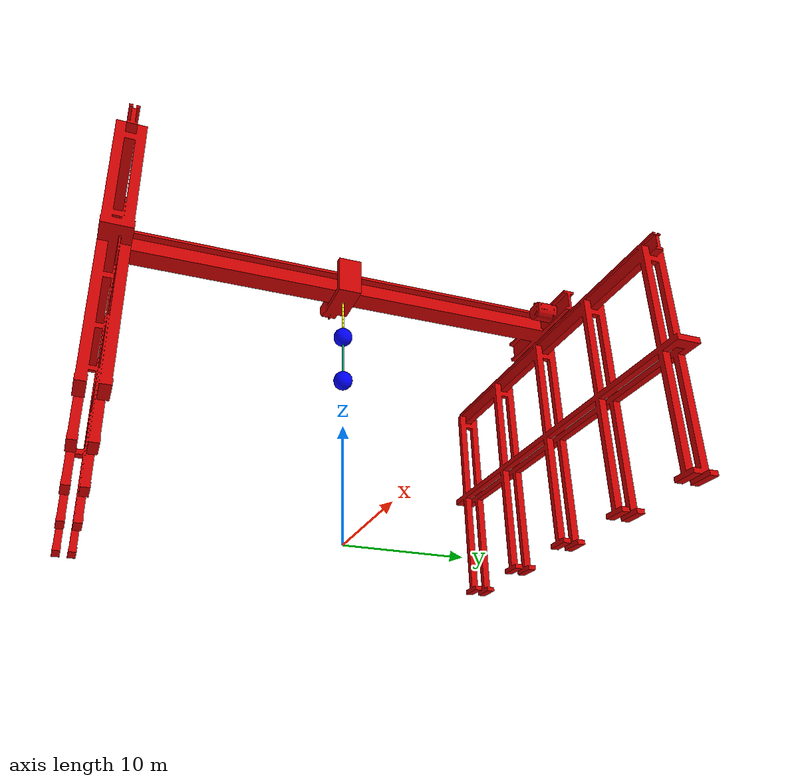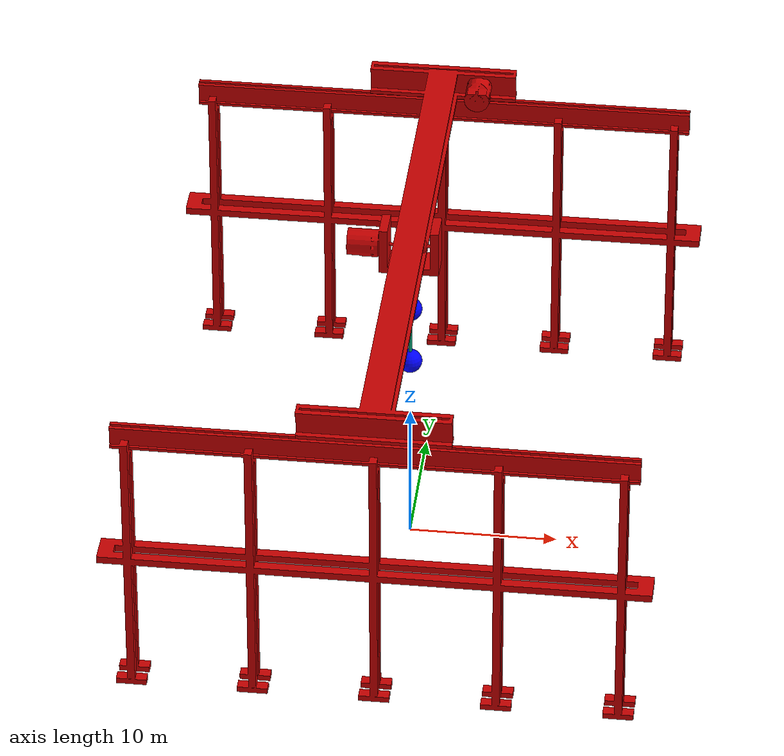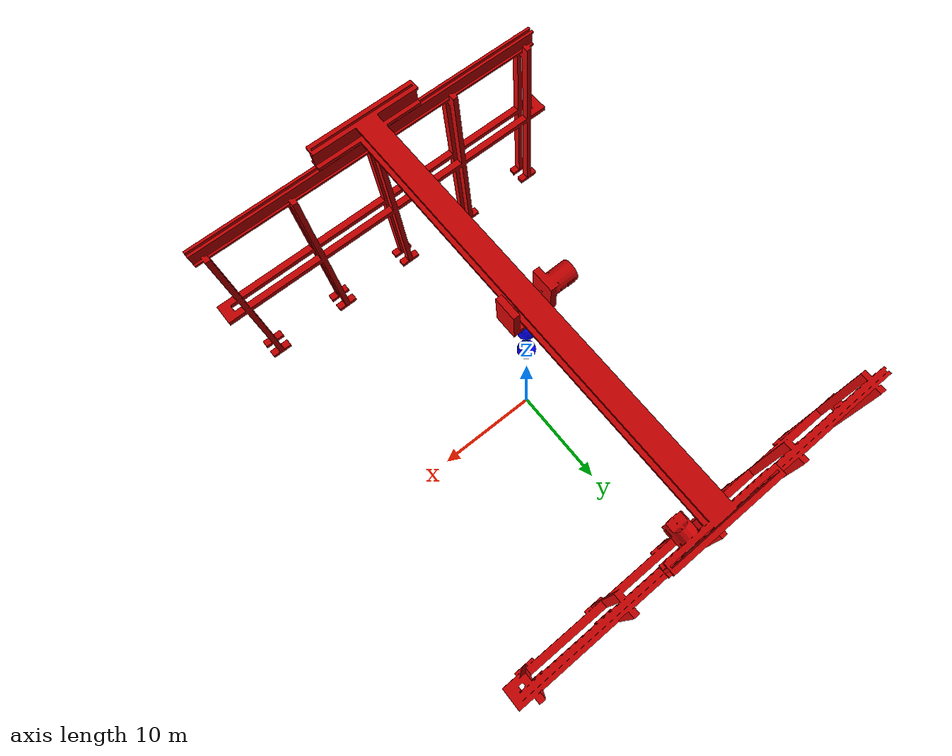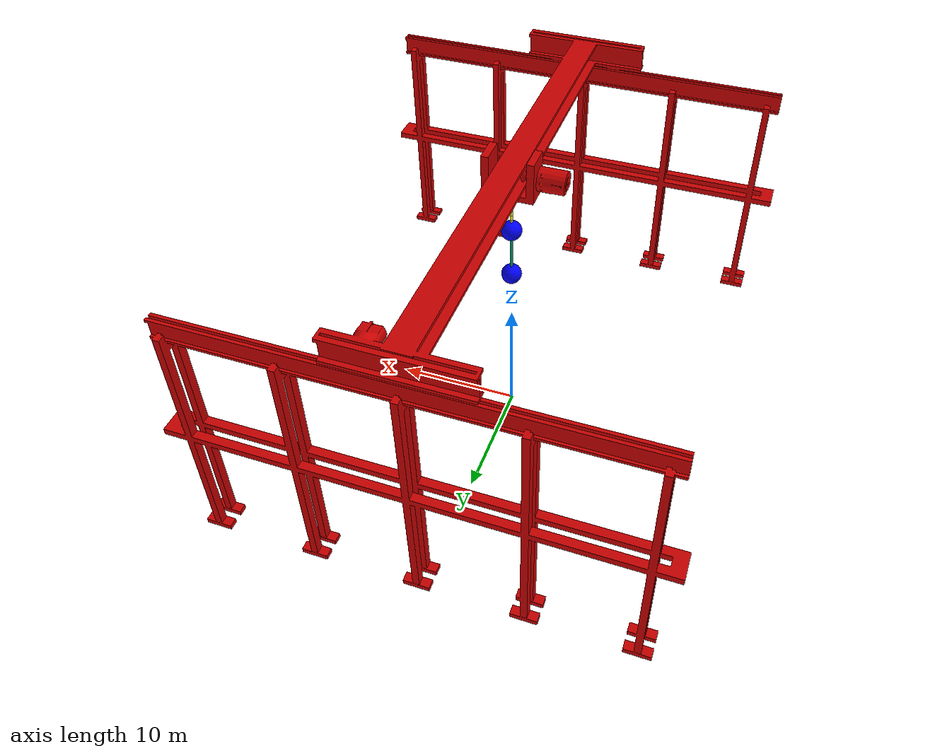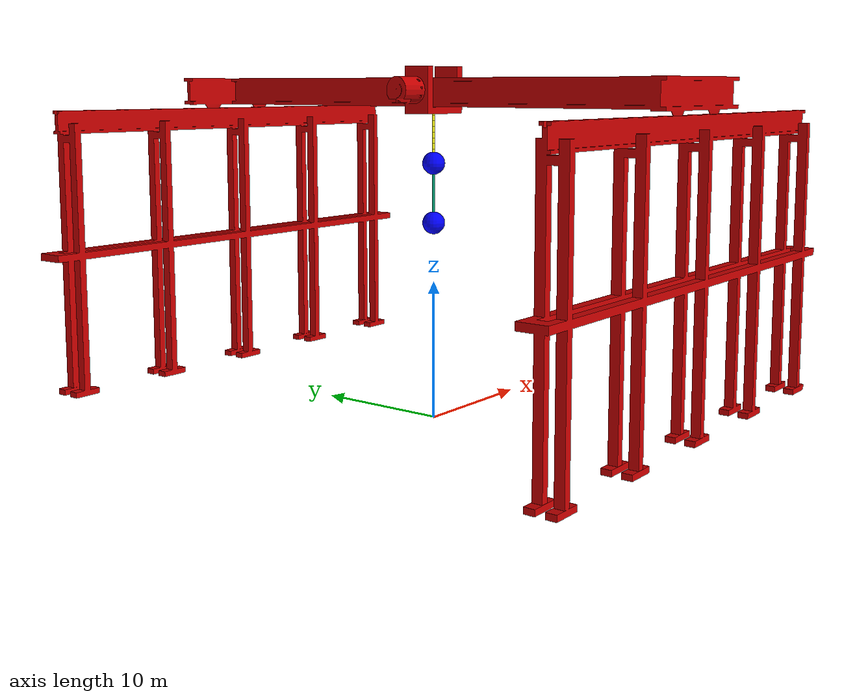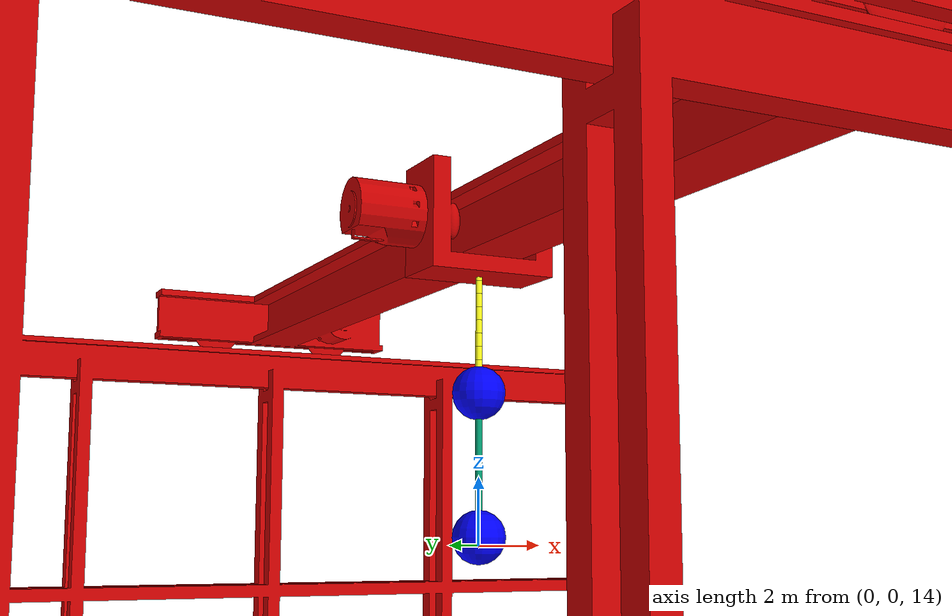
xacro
<?xml version="1.0"?>
<!-- URDF DESCRIPTION OF THE DOUBLE PENDULUM CRANE -->
<!-- October 2024                  -->

<robot name="crane" xmlns:xacro="http://www.ros.org/wiki/xacro">

<!-- Body dimensions -->
<xacro:property name="rope_length" value="4"/>
<xacro:property name="num_segments" value="10"/>
<xacro:property name="segment_length" value="${rope_length / num_segments}"/>
<xacro:property name="segment_mass" value="0.005"/>
<xacro:property name="segment_radius" value="0.1"/>
<xacro:property name="joint_radius" value="0.1"/>
<xacro:property name="cylinder_radius" value="0.1"/>
<xacro:property name="cylinder_length" value="8"/>

<material name="blue">
  <color rgba="0 0 0.8 1"/>
</material>
<material name="black">
  <color rgba="0 0 0 1"/>
</material>
<material name="white">
  <color rgba="1 1 1 1"/>
</material>
<material name="red">
  <color rgba="0.8 0 0 1"/>
</material>
<material name="red">
  <color rgba="0.8 0 0 1"/>
</material>
<material name="yellow">
  <color rgba="0.8 0.8 0 1"/>
</material>
<material name="blue">
  <color rgba="0 0 0.8 1"/>
</material>

<link name="world"/>

<link name ="base">
    <visual>
        <geometry>
        <mesh filename="package://crane/model/base_structure.stl" scale="1 1 1"/>
        </geometry>
        <origin xyz="0 0 0" rpy="0 0 0"/>
        <material name="red"/>
  </visual>
   <collision>
    <geometry>
      <mesh filename="package://crane/model/base_structure.stl" scale="1 1 1" />
    </geometry>
    <origin xyz="0 0 0" rpy="0 0 0"/>
  </collision>
  <inertial>
    <mass value="500"/>
    <origin xyz="0 0 0" rpy="0 0 0"/>
    <inertia ixx="0.11379" ixy="-0.102" ixz="0.26544" iyy="15.372" iyz="0" izz="23.868"/>
  </inertial>
</link>
<gazebo reference="base">
  <material>Gazebo/Black</material>
</gazebo>

<joint name="base_joint" type="fixed">
    <parent link="world"/>
    <child link="base"/>
    <origin xyz="0 0 2" rpy="0 0 0"/>
</joint>

<link name="bridge">
  <visual>
    <geometry>
     <mesh filename="package://crane/model/bridge2stl.stl" scale="1 1 1"/>
    </geometry>
    <origin xyz="0 0 0" rpy="0 0 0"/>
    <material name="red"/>
  </visual>
  <collision>
    <geometry>
      <mesh filename="package://crane/model/bridge2stl.stl" scale="1 1 1" />
    </geometry>
    <origin xyz="0 0 0" rpy="0 0 0"/>
    <surface>
                <friction>
                    <ode>
                        <mu>0.5</mu>
                    </ode>
                </friction>
            </surface>
  </collision>
  <inertial>
    <mass value="15"/>
    <origin xyz="0 0 0" rpy="0 0 0"/>
        <inertia ixx="0.11379" ixy="-0.102" ixz="0.26544" iyy="15.372" iyz="0" izz="23.868"/>

  </inertial>
</link>
<gazebo reference="bridge">
  <material>Gazebo/Yellow</material>
</gazebo>

<link name="cart">
  <visual>
    <geometry>
     <mesh filename="package://crane/model/cart2.stl" scale="1.1 1 1.1"/>
    </geometry>
    <origin xyz="0 0 0" rpy="0 0 0"/>
    <material name="red"/>
  </visual>
  <collision>
    <geometry>
      <mesh filename="package://crane/model/cart2.stl" scale="1.1 1 1.1" />
    </geometry>
    <origin xyz="0 0 0" rpy="0 0 0"/>
    <surface>
                <friction>
                    <ode>
                        <mu>0.1</mu>
                    </ode>
                </friction>
            </surface>
  </collision>
  <inertial>
    <mass value="7"/>
    <origin xyz="0 0 0" rpy="0 0 0"/>
           <inertia ixx="76.01" ixy="-4.20" ixz="0" iyy="84" iyz="-3.8" izz="83.25"/>

  </inertial>
</link>
<gazebo reference="cart">
  <material>Gazebo/Orange</material>
</gazebo>

<xacro:macro name="prismatic_joint" params="name parent child x y z axis_x axis_y axis_z upper lower velocity damping">
  <joint name="${name}" type="prismatic">
    <parent link="${parent}"/>
    <child link="${child}"/>
    <origin xyz="${x} ${y} ${z}" rpy="0 0 0"/>

    <axis xyz="${axis_x} ${axis_y} ${axis_z}" rpy="0 0 0"/>
    <limit lower="${lower}" upper="${upper}" effort="1000" velocity="${velocity}"/>
    <dynamics damping="${damping}"/>
  </joint>
</xacro:macro>

<xacro:prismatic_joint name="bridge_joint" parent="base" child="bridge" x="0" y="0" z="0" axis_x="1" axis_y="0" axis_z="0" upper ="10" lower="-10" velocity = "5" damping="0"/>
<xacro:prismatic_joint name="cart_joint" parent="bridge" child="cart" x="0" y="0" z="-2" axis_x="0" axis_y="1" axis_z="0" upper ="17" lower="-17" velocity = "1" damping="0"/>

<xacro:macro name="bearing" params="name">
<link name="${name}">
      <visual>
        <geometry>
          <cylinder length="0.1" radius="0.05"/>
        </geometry>
        <material name="blue"/>

      </visual>
      <collision>
        <geometry>
          <cylinder length="0.1" radius="0.05"/>
        </geometry>
        <surface>
                <friction>
                    <ode>
                        <mu>0.1</mu>
                    </ode>
                </friction>
            </surface>
      </collision>
      <inertial>
        <mass value="0.001"/>
        <inertia ixx="1e-6" ixy="0" ixz="0" iyy="1e-6" iyz="0" izz="1e-6"/>
      </inertial>
    </link>
   </xacro:macro>
   <xacro:bearing name="bearing" />
   <xacro:bearing name="bearing2" />
    <gazebo reference="bearing">
      <material>Gazebo/Black</material>
    </gazebo>

<xacro:macro name="pseudo" params="name">
 <link name="${name}">
   <visual>
        <geometry>
          <sphere radius="0.00005" />
        </geometry>
        <origin xyz="0 0 0" rpy="0 0 0" />
        <material name="blue">
          <color rgba="0 0 1 1" />
        </material>
      </visual>
      <collision>
        <geometry>
          <sphere radius="0.00005" />
        </geometry>
        <origin xyz="0 0 0" rpy="0 0 0" />
        <surface>
                <friction>
                    <ode>
                        <mu>0.1</mu>
                    </ode>
                </friction>
            </surface>
      </collision>
      <inertial>
        <mass value="0.0001" />
        <origin xyz="0 0 0" rpy="0 0 0" />
        <inertia ixx="0.1" ixy="0" ixz="0" iyy="0.1" iyz="0" izz="0.1" />
      </inertial>
  </link>
  </xacro:macro>

  <xacro:pseudo name="pseudo" />
<xacro:pseudo name="pseudo2" />

<xacro:macro name="fixed_joint" params="name parent child origin_xyz origin_rpy">
  <joint name="${name}" type="fixed">
    <parent link="${parent}"/>
    <child link="${child}"/>
    <origin xyz="${origin_xyz}" rpy="${origin_rpy}"/>
    <dynamics damping="0.0"/>
  </joint>
</xacro:macro>

  <joint name="cart_bearing" type="revolute">
    <parent link="cart"/>
    <child link="bearing"/>
    <origin xyz="0 0 22.5" rpy="0 0 0"/>
    <axis xyz="1 0 0"/>
    <limit lower="-1.57" upper="1.57" effort="1000" velocity="1"/>
    <dynamics damping="0.5"/>

  </joint>
    <joint name="pseudo_joint_1" type="revolute">
    <parent link="bearing"/>
    <child link="pseudo"/>
    <origin xyz="0 0 0" rpy="0 0 0"/>
    <axis xyz="0 1 0"/>
    <limit lower="-1.57" upper="1.57" effort="1000" velocity="1"/>
    <dynamics damping="0.5"/>
  </joint>

  <joint name="load_rope" type="revolute">
    <parent link="segment_2_1_link"/>
    <child link="load"/>
    <origin xyz="0 0 0" rpy="0 0 0"/>
    <axis xyz="0 0 0"/>
    <limit lower="0" upper="0" effort="10000" velocity="0"/>
    <dynamics damping="0.5"/>
  </joint>

    <joint name="bearing2_joint" type="fixed">
    <parent link="load"/>
    <child link="bearing2"/>
    <origin xyz="0 0 0" rpy="0 0 0"/>
    <axis xyz="0 1 0"/>
    <limit lower="-1.57" upper="1.57" effort="1000" velocity="1"/>
    <dynamics damping="0.5"/>
  </joint>

  <joint name="pseudo2_joint" type="fixed">
    <parent link="bearing2"/>
    <child link="pseudo2"/>
    <origin xyz="0 0 0" rpy="0 0 0"/>
    <axis xyz="1 0 0"/>
    <limit lower="-1.57" upper="1.57" effort="10000" velocity="0"/>
    <dynamics damping="0.5"/>
  </joint>

    <joint name="rope_2_joint" type="fixed">
    <parent link="pseudo2"/>
    <child link="rope2"/>
    <origin xyz="0 0 -0.25" rpy="0 0 0"/>
    <axis xyz="0 0 0"/>
    <limit lower="0" upper="0" effort="10000" velocity="0"/>
    <dynamics damping="0.5"/>
  </joint>

  <joint name="load2_joint" type="revolute">
    <parent link="rope2"/>
    <child link="load2"/>
    <origin xyz="0 0 -4" rpy="0 0 0"/>
    <axis xyz="0 0 0"/>
    <limit lower="0" upper="0" effort="10000" velocity="0"/>
    <dynamics damping="0.5"/>
  </joint>

<xacro:macro name="rope_segment" params="prefix parent">
  <link name="${prefix}_link">
    <inertial>
      <origin xyz="0 0 0" rpy="0 0 0"/>
      <mass value="${segment_mass}"/>
      <inertia ixx="1e-6" ixy="0" ixz="0" iyy="1e-6" iyz="0" izz="1e-6"/>
    </inertial>
    <visual>
      <origin xyz="0 0 0" rpy="0 0 0"/>
      <geometry>
        <cylinder length="${segment_length}" radius="${segment_radius}"/>
      </geometry>
      <material name="tether_material">
        <color rgba="1 1 0.1 1"/>
      </material>
    </visual>
    <collision>
      <origin xyz="0 0 0" rpy="0 0 0"/>
      <geometry>
        <cylinder length="${segment_length}" radius="${segment_radius}"/>
      </geometry>
    </collision>
  </link>

  <joint name="${prefix}_joint" type="fixed">
    <parent link="${parent}"/>
    <child link="${prefix}_link"/>
    <origin xyz="0 0 -${segment_length}" rpy="0 0 0"/>
    <axis xyz="0 0 0"/>
    <limit lower="-1.57" upper="1.57" effort="1000" velocity="1"/>

  </joint>

</xacro:macro>

 <xacro:macro name="rope_recursive" params="num_segments parent_link">
  <xacro:if value="${num_segments > 0}">
    <xacro:property name="current_prefix" value="segment_2_${num_segments}" />
    <xacro:rope_segment prefix="${current_prefix}" parent="${parent_link}" />
    <xacro:rope_recursive num_segments="${num_segments - 1}" parent_link="${current_prefix}_link" />
  </xacro:if>
</xacro:macro>

<xacro:macro name="rope_2" params="num_segments">
  <xacro:property name="initial_parent" value="pseudo" />
  <xacro:rope_recursive num_segments="${num_segments}" parent_link="pseudo" />
</xacro:macro>

  <xacro:rope_2 num_segments="${num_segments}" />

<xacro:macro name="cylinder" params="name cylinder_length cylinder_radius mass">
    <link name="${name}">
      <visual>
      <origin xyz="0 0 ${-cylinder_length/2}" rpy="0 0 0" />
        <geometry>
          <cylinder length="${cylinder_length}" radius="${cylinder_radius}"/>
        </geometry>
      </visual>
      <collision>
      <origin xyz="0 0 ${-cylinder_length/2}" rpy="0 0 0" />
        <geometry>
          <cylinder length="${cylinder_length}" radius="${cylinder_radius}"/>
        </geometry>
      </collision>

      <inertial>
        <mass value="0.08" />
        <origin xyz="0 0 ${-cylinder_length/2}" rpy="0 0 0" />
        <inertia ixx="${0.25*mass*cylinder_radius*cylinder_radius + 0.083333333*mass*cylinder_length*cylinder_length}"
                 ixy="0" ixz="0"
                 iyy="${0.25*mass*cylinder_radius*cylinder_radius + 0.083333333*mass*cylinder_length*cylinder_length}"
                 iyz="0"
                 izz="${0.5*mass*cylinder_radius*cylinder_radius}" />
      </inertial>
    </link>
</xacro:macro>

  <!-- Call the macro to create a cylinder -->
<xacro:cylinder name="rope2" cylinder_length="4" cylinder_radius = "0.1" mass= "0.08" />

<xacro:macro name="load" params="name mass">
<link name="${name}">
      <visual>
        <geometry>
          <sphere radius="0.8" />
        </geometry>
        <origin xyz="0 0 0" rpy="0 0 0" />
        <material name="blue">
          <color rgba="0 0 1 1" />
        </material>
      </visual>
      <collision>
        <geometry>
          <sphere radius="0.8" />
        </geometry>
        <origin xyz="0 0 0" rpy="0 0 0" />
      </collision>
      <inertial>
        <mass value="${mass}" />
        <origin xyz="0 0 0" rpy="0 0 0" />
        <inertia ixx="0.1" ixy="0" ixz="0" iyy="0.1" iyz="0" izz="0.1" />
      </inertial>
    </link>
  </xacro:macro>
  <xacro:load name="load" mass="3" />
  <xacro:load name="load2"  mass="1"/>
    <gazebo reference="load">
      <material>Gazebo/Yellow</material>
    </gazebo>
<gazebo reference="load2">
      <material>Gazebo/Yellow</material>
    </gazebo>

  <!-- Transmissions -->

</robot>
